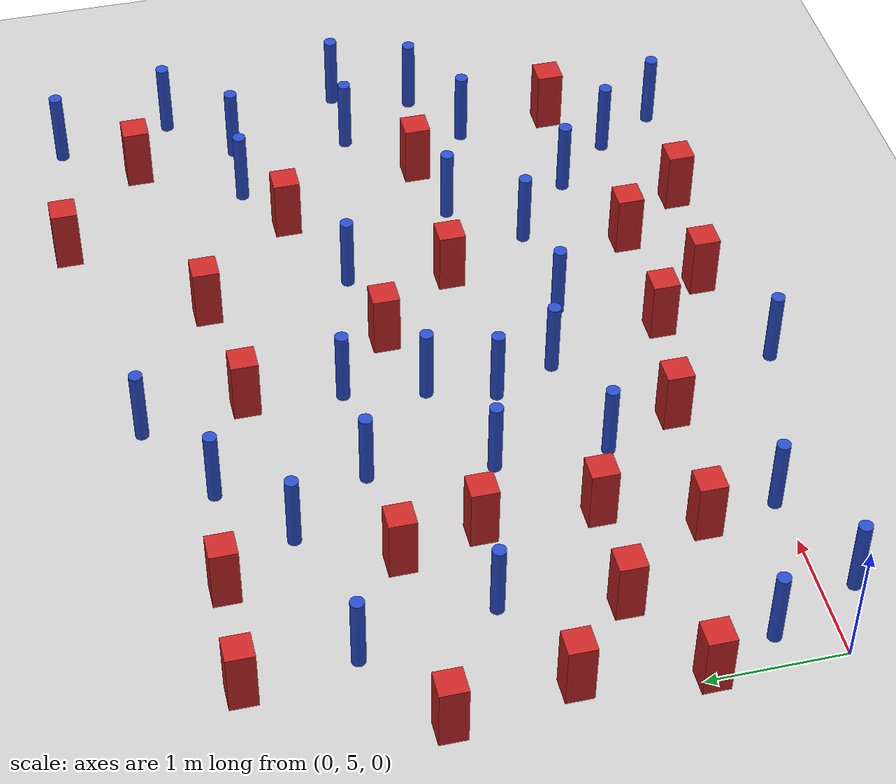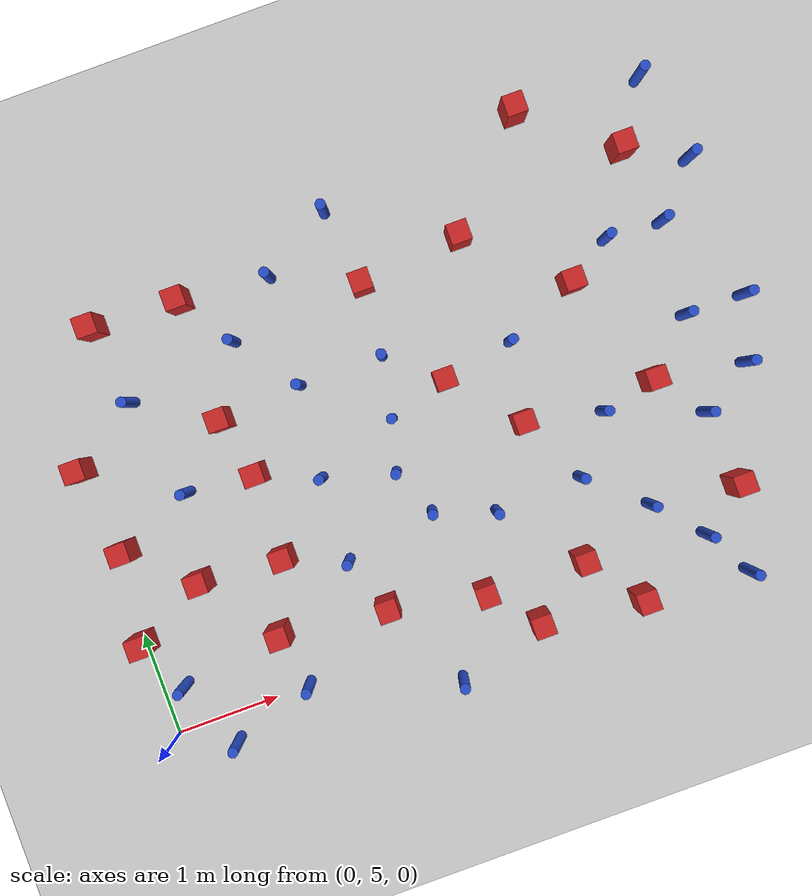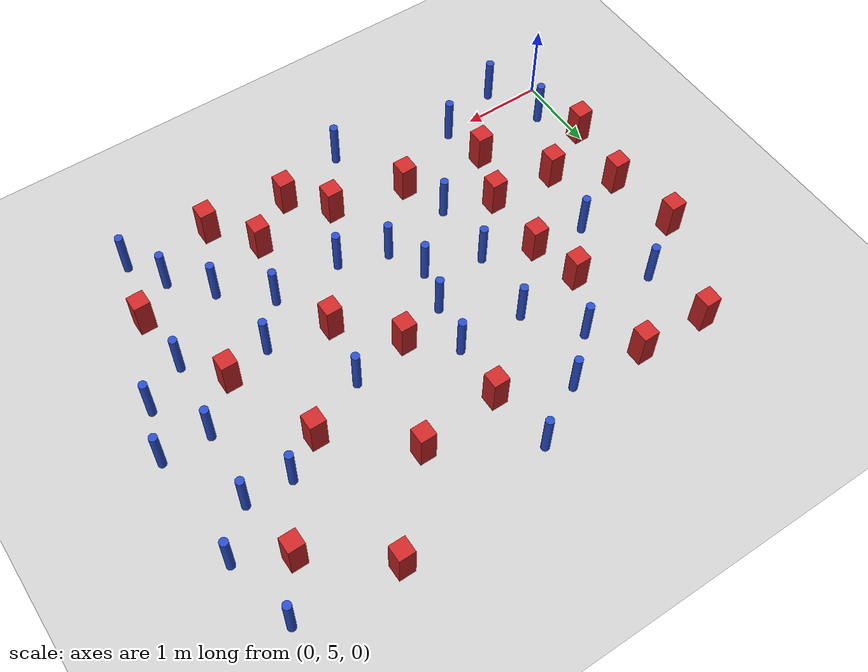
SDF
<sdf version="1.6">
 <world name="default">
  <model name="ground_plane">
   <static>1</static>
   <link name="link">
    <collision name="collision">
     <geometry><plane><normal>0 0 1</normal><size>100 100</size></plane></geometry>
     <surface><friction><ode><mu>100</mu><mu2>50</mu2></ode></friction></surface>
    </collision>
    <visual name="visual">
     <cast_shadows>0</cast_shadows>
     <geometry><plane><normal>0 0 1</normal><size>100 100</size></plane></geometry>
     <material>
      <ambient>1.0 1.0 1.0 1.0</ambient>
      <diffuse>0.8 0.8 0.8 1.0</diffuse>
      <specular>0.01 0.01 0.01 1.000000</specular>
     </material>
    </visual>
   </link>
  </model>
  <model name="square_post_obstacle3">
   <static>true</static>
   <pose>5.82159080179 5.45630986029 1.91545236811e-07 -7.35059704564e-06 1.12565212e-07 2.39332434364e-05</pose>
   <link name="link">
    <pose>0 0 0.25 0 -0 0</pose>
    <inertial>
     <mass>100</mass>
     <inertia>
      <ixx>0.166667</ixx>
      <ixy>0</ixy>
      <ixz>0</ixz>
      <iyy>0.166667</iyy>
      <iyz>0</iyz>
      <izz>0.166667</izz>
     </inertia>
    </inertial>
    <collision name="collision"><geometry><box><size>.2 .2 .5</size></box></geometry></collision>
    <visual name="visual">
     <geometry><box><size>.2 .2 .5</size></box></geometry>
     <material>
      <script><name>Gazebo/Red</name><uri>file://media/materials/scripts/gazebo.material</uri></script>
     </material>
    </visual>
   </link>
  </model>
  <model name="pole_obstacle7">
   <static>true</static>
   <pose>3.00797977638 6.1850498163 7.38925637345e-09 -8.47170692798e-08 1.24976765033e-08 -1.74513093019e-07</pose>
   <link name="link">
    <pose>0 0 0.3 0 -0 0</pose>
    <inertial>
     <mass>1</mass>
     <inertia><ixx>0.145833</ixx><ixy>0</ixy><ixz>0</ixz><iyy>0.145833</iyy><iyz>0</iyz><izz>0.125</izz></inertia>
    </inertial>
    <collision name="collision">
     <geometry><cylinder><radius>0.05</radius><length>.6</length></cylinder></geometry>
    </collision>
    <visual name="visual">
     <geometry><cylinder><radius>0.05</radius><length>.6</length></cylinder></geometry>
     <material>
      <script><name>Gazebo/Blue</name><uri>file://media/materials/scripts/gazebo.material</uri></script>
     </material>
    </visual>
   </link>
  </model>
  <model name="pole_obstacle16">
   <static>true</static>
   <pose>4.96593915491 5.55111846914 7.38925637345e-09 -8.47170692796e-08 1.24976764786e-08 -1.74513093032e-07</pose>
   <link name="link">
    <pose>0 0 0.3 0 -0 0</pose>
    <inertial>
     <mass>1</mass>
     <inertia><ixx>0.145833</ixx><ixy>0</ixy><ixz>0</ixz><iyy>0.145833</iyy><iyz>0</iyz><izz>0.125</izz></inertia>
    </inertial>
    <collision name="collision">
     <geometry><cylinder><radius>0.05</radius><length>.6</length></cylinder></geometry>
    </collision>
    <visual name="visual">
     <geometry><cylinder><radius>0.05</radius><length>.6</length></cylinder></geometry>
     <material>
      <script><name>Gazebo/Blue</name><uri>file://media/materials/scripts/gazebo.material</uri></script>
     </material>
    </visual>
   </link>
  </model>
  <model name="pole_obstacle17">
   <static>true</static>
   <pose>3.00876087252 9.20994033357 7.38925637345e-09 -8.47170692793e-08 1.24976764408e-08 -1.74513093041e-07</pose>
   <link name="link">
    <pose>0 0 0.3 0 -0 0</pose>
    <inertial>
     <mass>1</mass>
     <inertia><ixx>0.145833</ixx><ixy>0</ixy><ixz>0</ixz><iyy>0.145833</iyy><iyz>0</iyz><izz>0.125</izz></inertia>
    </inertial>
    <collision name="collision">
     <geometry><cylinder><radius>0.05</radius><length>.6</length></cylinder></geometry>
    </collision>
    <visual name="visual">
     <geometry><cylinder><radius>0.05</radius><length>.6</length></cylinder></geometry>
     <material>
      <script><name>Gazebo/Blue</name><uri>file://media/materials/scripts/gazebo.material</uri></script>
     </material>
    </visual>
   </link>
  </model>
  <model name="pole_obstacle24">
   <static>true</static>
   <pose>0.891140745379 7.14674532964 7.38925637345e-09 -8.471706928e-08 1.24976765086e-08 -1.74513093015e-07</pose>
   <link name="link">
    <pose>0 0 0.3 0 -0 0</pose>
    <inertial>
     <mass>1</mass>
     <inertia><ixx>0.145833</ixx><ixy>0</ixy><ixz>0</ixz><iyy>0.145833</iyy><iyz>0</iyz><izz>0.125</izz></inertia>
    </inertial>
    <collision name="collision">
     <geometry><cylinder><radius>0.05</radius><length>.6</length></cylinder></geometry>
    </collision>
    <visual name="visual">
     <geometry><cylinder><radius>0.05</radius><length>.6</length></cylinder></geometry>
     <material>
      <script><name>Gazebo/Blue</name><uri>file://media/materials/scripts/gazebo.material</uri></script>
     </material>
    </visual>
   </link>
  </model>
  <model name="pole_obstacle29">
   <static>true</static>
   <pose>2.74446945684 4.58754578758 7.38925637345e-09 -8.47170692798e-08 1.24976765033e-08 -1.74513093019e-07</pose>
   <link name="link">
    <pose>0 0 0.3 0 -0 0</pose>
    <inertial>
     <mass>1</mass>
     <inertia><ixx>0.145833</ixx><ixy>0</ixy><ixz>0</ixz><iyy>0.145833</iyy><iyz>0</iyz><izz>0.125</izz></inertia>
    </inertial>
    <collision name="collision">
     <geometry><cylinder><radius>0.05</radius><length>.6</length></cylinder></geometry>
    </collision>
    <visual name="visual">
     <geometry><cylinder><radius>0.05</radius><length>.6</length></cylinder></geometry>
     <material>
      <script><name>Gazebo/Blue</name><uri>file://media/materials/scripts/gazebo.material</uri></script>
     </material>
    </visual>
   </link>
  </model>
  <model name="pole_obstacle33">
   <static>true</static>
   <pose>6.47072890941 7.11765859032 7.38925637345e-09 -8.47170692796e-08 1.24976764786e-08 -1.74513093032e-07</pose>
   <link name="link">
    <pose>0 0 0.3 0 -0 0</pose>
    <inertial>
     <mass>1</mass>
     <inertia><ixx>0.145833</ixx><ixy>0</ixy><ixz>0</ixz><iyy>0.145833</iyy><iyz>0</iyz><izz>0.125</izz></inertia>
    </inertial>
    <collision name="collision">
     <geometry><cylinder><radius>0.05</radius><length>.6</length></cylinder></geometry>
    </collision>
    <visual name="visual">
     <geometry><cylinder><radius>0.05</radius><length>.6</length></cylinder></geometry>
     <material>
      <script><name>Gazebo/Blue</name><uri>file://media/materials/scripts/gazebo.material</uri></script>
     </material>
    </visual>
   </link>
  </model>
  <model name="square_post_obstacle35">
   <static>true</static>
   <pose>4.10618006728 6.69106213201 1.91545236811e-07 -7.35059704564e-06 1.12565212e-07 2.39332434364e-05</pose>
   <link name="link">
    <pose>0 0 0.25 0 -0 0</pose>
    <inertial>
     <mass>100</mass>
     <inertia>
      <ixx>0.166667</ixx>
      <ixy>0</ixy>
      <ixz>0</ixz>
      <iyy>0.166667</iyy>
      <iyz>0</iyz>
      <izz>0.166667</izz>
     </inertia>
    </inertial>
    <collision name="collision"><geometry><box><size>.2 .2 .5</size></box></geometry></collision>
    <visual name="visual">
     <geometry><box><size>.2 .2 .5</size></box></geometry>
     <material>
      <script><name>Gazebo/Red</name><uri>file://media/materials/scripts/gazebo.material</uri></script>
     </material>
    </visual>
   </link>
  </model>
  <model name="pole_obstacle36">
   <static>true</static>
   <pose>3.06345903076 7.73433652834 7.38925637345e-09 -8.47170692798e-08 1.24976765033e-08 -1.74513093019e-07</pose>
   <link name="link">
    <pose>0 0 0.3 0 -0 0</pose>
    <inertial>
     <mass>1</mass>
     <inertia><ixx>0.145833</ixx><ixy>0</ixy><ixz>0</ixz><iyy>0.145833</iyy><iyz>0</iyz><izz>0.125</izz></inertia>
    </inertial>
    <collision name="collision">
     <geometry><cylinder><radius>0.05</radius><length>.6</length></cylinder></geometry>
    </collision>
    <visual name="visual">
     <geometry><cylinder><radius>0.05</radius><length>.6</length></cylinder></geometry>
     <material>
      <script><name>Gazebo/Blue</name><uri>file://media/materials/scripts/gazebo.material</uri></script>
     </material>
    </visual>
   </link>
  </model>
  <model name="pole_obstacle37">
   <static>true</static>
   <pose>0.545006445419 4.76677208191 7.38925637345e-09 -8.47170692799e-08 1.24976765073e-08 -1.74513093015e-07</pose>
   <link name="link">
    <pose>0 0 0.3 0 -0 0</pose>
    <inertial>
     <mass>1</mass>
     <inertia><ixx>0.145833</ixx><ixy>0</ixy><ixz>0</ixz><iyy>0.145833</iyy><iyz>0</iyz><izz>0.125</izz></inertia>
    </inertial>
    <collision name="collision">
     <geometry><cylinder><radius>0.05</radius><length>.6</length></cylinder></geometry>
    </collision>
    <visual name="visual">
     <geometry><cylinder><radius>0.05</radius><length>.6</length></cylinder></geometry>
     <material>
      <script><name>Gazebo/Blue</name><uri>file://media/materials/scripts/gazebo.material</uri></script>
     </material>
    </visual>
   </link>
  </model>
  <model name="pole_obstacle51">
   <static>true</static>
   <pose>6.23628902199 9.38711099899 7.38925637345e-09 -8.471706928e-08 1.24976765081e-08 -1.74513093015e-07</pose>
   <link name="link">
    <pose>0 0 0.3 0 -0 0</pose>
    <inertial>
     <mass>1</mass>
     <inertia><ixx>0.145833</ixx><ixy>0</ixy><ixz>0</ixz><iyy>0.145833</iyy><iyz>0</iyz><izz>0.125</izz></inertia>
    </inertial>
    <collision name="collision">
     <geometry><cylinder><radius>0.05</radius><length>.6</length></cylinder></geometry>
    </collision>
    <visual name="visual">
     <geometry><cylinder><radius>0.05</radius><length>.6</length></cylinder></geometry>
     <material>
      <script><name>Gazebo/Blue</name><uri>file://media/materials/scripts/gazebo.material</uri></script>
     </material>
    </visual>
   </link>
  </model>
  <model name="pole_obstacle53">
   <static>true</static>
   <pose>6.42150779864 8.50671197494 7.38925637345e-09 -8.471706928e-08 1.24976765081e-08 -1.74513093015e-07</pose>
   <link name="link">
    <pose>0 0 0.3 0 -0 0</pose>
    <inertial>
     <mass>1</mass>
     <inertia><ixx>0.145833</ixx><ixy>0</ixy><ixz>0</ixz><iyy>0.145833</iyy><iyz>0</iyz><izz>0.125</izz></inertia>
    </inertial>
    <collision name="collision">
     <geometry><cylinder><radius>0.05</radius><length>.6</length></cylinder></geometry>
    </collision>
    <visual name="visual">
     <geometry><cylinder><radius>0.05</radius><length>.6</length></cylinder></geometry>
     <material>
      <script><name>Gazebo/Blue</name><uri>file://media/materials/scripts/gazebo.material</uri></script>
     </material>
    </visual>
   </link>
  </model>
  <model name="square_post_obstacle59">
   <static>true</static>
   <pose>4.2031210996 5.26656452936 1.91545236811e-07 -7.35059704564e-06 1.12565212e-07 2.39332434364e-05</pose>
   <link name="link">
    <pose>0 0 0.25 0 -0 0</pose>
    <inertial>
     <mass>100</mass>
     <inertia>
      <ixx>0.166667</ixx>
      <ixy>0</ixy>
      <ixz>0</ixz>
      <iyy>0.166667</iyy>
      <iyz>0</iyz>
      <izz>0.166667</izz>
     </inertia>
    </inertial>
    <collision name="collision"><geometry><box><size>.2 .2 .5</size></box></geometry></collision>
    <visual name="visual">
     <geometry><box><size>.2 .2 .5</size></box></geometry>
     <material>
      <script><name>Gazebo/Red</name><uri>file://media/materials/scripts/gazebo.material</uri></script>
     </material>
    </visual>
   </link>
  </model>
  <model name="square_post_obstacle69">
   <static>true</static>
   <pose>5.01271067699 9.48730758839 1.91545236811e-07 -7.35059704564e-06 1.12565212e-07 2.39332434364e-05</pose>
   <link name="link">
    <pose>0 0 0.25 0 -0 0</pose>
    <inertial>
     <mass>100</mass>
     <inertia>
      <ixx>0.166667</ixx>
      <ixy>0</ixy>
      <ixz>0</ixz>
      <iyy>0.166667</iyy>
      <iyz>0</iyz>
      <izz>0.166667</izz>
     </inertia>
    </inertial>
    <collision name="collision"><geometry><box><size>.2 .2 .5</size></box></geometry></collision>
    <visual name="visual">
     <geometry><box><size>.2 .2 .5</size></box></geometry>
     <material>
      <script><name>Gazebo/Red</name><uri>file://media/materials/scripts/gazebo.material</uri></script>
     </material>
    </visual>
   </link>
  </model>
  <model name="square_post_obstacle72">
   <static>true</static>
   <pose>0.137853001737 6.82053739626 1.91545236811e-07 -7.35059704564e-06 1.12565212e-07 2.39332434364e-05</pose>
   <link name="link">
    <pose>0 0 0.25 0 -0 0</pose>
    <inertial>
     <mass>100</mass>
     <inertia>
      <ixx>0.166667</ixx>
      <ixy>0</ixy>
      <ixz>0</ixz>
      <iyy>0.166667</iyy>
      <iyz>0</iyz>
      <izz>0.166667</izz>
     </inertia>
    </inertial>
    <collision name="collision"><geometry><box><size>.2 .2 .5</size></box></geometry></collision>
    <visual name="visual">
     <geometry><box><size>.2 .2 .5</size></box></geometry>
     <material>
      <script><name>Gazebo/Red</name><uri>file://media/materials/scripts/gazebo.material</uri></script>
     </material>
    </visual>
   </link>
  </model>
  <model name="square_post_obstacle74">
   <static>true</static>
   <pose>0.716877768039 6.31205144906 1.91545236811e-07 -7.35059704564e-06 1.12565212e-07 2.39332434364e-05</pose>
   <link name="link">
    <pose>0 0 0.25 0 -0 0</pose>
    <inertial>
     <mass>100</mass>
     <inertia>
      <ixx>0.166667</ixx>
      <ixy>0</ixy>
      <ixz>0</ixz>
      <iyy>0.166667</iyy>
      <iyz>0</iyz>
      <izz>0.166667</izz>
     </inertia>
    </inertial>
    <collision name="collision"><geometry><box><size>.2 .2 .5</size></box></geometry></collision>
    <visual name="visual">
     <geometry><box><size>.2 .2 .5</size></box></geometry>
     <material>
      <script><name>Gazebo/Red</name><uri>file://media/materials/scripts/gazebo.material</uri></script>
     </material>
    </visual>
   </link>
  </model>
  <model name="pole_obstacle80">
   <static>true</static>
   <pose>5.63670275837 4.64141263718 7.38925637345e-09 -8.47170692796e-08 1.24976764786e-08 -1.74513093032e-07</pose>
   <link name="link">
    <pose>0 0 0.3 0 -0 0</pose>
    <inertial>
     <mass>1</mass>
     <inertia><ixx>0.145833</ixx><ixy>0</ixy><ixz>0</ixz><iyy>0.145833</iyy><iyz>0</iyz><izz>0.125</izz></inertia>
    </inertial>
    <collision name="collision">
     <geometry><cylinder><radius>0.05</radius><length>.6</length></cylinder></geometry>
    </collision>
    <visual name="visual">
     <geometry><cylinder><radius>0.05</radius><length>.6</length></cylinder></geometry>
     <material>
      <script><name>Gazebo/Blue</name><uri>file://media/materials/scripts/gazebo.material</uri></script>
     </material>
    </visual>
   </link>
  </model>
  <model name="pole_obstacle89">
   <static>true</static>
   <pose>2.31267627914 8.80272903111 7.38925637345e-09 -8.47170692793e-08 1.24976764408e-08 -1.74513093041e-07</pose>
   <link name="link">
    <pose>0 0 0.3 0 -0 0</pose>
    <inertial>
     <mass>1</mass>
     <inertia><ixx>0.145833</ixx><ixy>0</ixy><ixz>0</ixz><iyy>0.145833</iyy><iyz>0</iyz><izz>0.125</izz></inertia>
    </inertial>
    <collision name="collision">
     <geometry><cylinder><radius>0.05</radius><length>.6</length></cylinder></geometry>
    </collision>
    <visual name="visual">
     <geometry><cylinder><radius>0.05</radius><length>.6</length></cylinder></geometry>
     <material>
      <script><name>Gazebo/Blue</name><uri>file://media/materials/scripts/gazebo.material</uri></script>
     </material>
    </visual>
   </link>
  </model>
  <model name="pole_obstacle95">
   <static>true</static>
   <pose>0.251070783263 5.43464747808 7.38925637345e-09 -8.47170692799e-08 1.24976765101e-08 -1.74513093014e-07</pose>
   <link name="link">
    <pose>0 0 0.3 0 -0 0</pose>
    <inertial>
     <mass>1</mass>
     <inertia><ixx>0.145833</ixx><ixy>0</ixy><ixz>0</ixz><iyy>0.145833</iyy><iyz>0</iyz><izz>0.125</izz></inertia>
    </inertial>
    <collision name="collision">
     <geometry><cylinder><radius>0.05</radius><length>.6</length></cylinder></geometry>
    </collision>
    <visual name="visual">
     <geometry><cylinder><radius>0.05</radius><length>.6</length></cylinder></geometry>
     <material>
      <script><name>Gazebo/Blue</name><uri>file://media/materials/scripts/gazebo.material</uri></script>
     </material>
    </visual>
   </link>
  </model>
  <model name="pole_obstacle97">
   <static>true</static>
   <pose>5.88731161994 7.12585078882 7.38925637345e-09 -8.47170692796e-08 1.24976764786e-08 -1.74513093032e-07</pose>
   <link name="link">
    <pose>0 0 0.3 0 -0 0</pose>
    <inertial>
     <mass>1</mass>
     <inertia><ixx>0.145833</ixx><ixy>0</ixy><ixz>0</ixz><iyy>0.145833</iyy><iyz>0</iyz><izz>0.125</izz></inertia>
    </inertial>
    <collision name="collision">
     <geometry><cylinder><radius>0.05</radius><length>.6</length></cylinder></geometry>
    </collision>
    <visual name="visual">
     <geometry><cylinder><radius>0.05</radius><length>.6</length></cylinder></geometry>
     <material>
      <script><name>Gazebo/Blue</name><uri>file://media/materials/scripts/gazebo.material</uri></script>
     </material>
    </visual>
   </link>
  </model>
  <model name="pole_obstacle102">
   <static>true</static>
   <pose>2.81491789884 6.65008645232 7.38925637345e-09 -8.47170692798e-08 1.24976765033e-08 -1.74513093019e-07</pose>
   <link name="link">
    <pose>0 0 0.3 0 -0 0</pose>
    <inertial>
     <mass>1</mass>
     <inertia><ixx>0.145833</ixx><ixy>0</ixy><ixz>0</ixz><iyy>0.145833</iyy><iyz>0</iyz><izz>0.125</izz></inertia>
    </inertial>
    <collision name="collision">
     <geometry><cylinder><radius>0.05</radius><length>.6</length></cylinder></geometry>
    </collision>
    <visual name="visual">
     <geometry><cylinder><radius>0.05</radius><length>.6</length></cylinder></geometry>
     <material>
      <script><name>Gazebo/Blue</name><uri>file://media/materials/scripts/gazebo.material</uri></script>
     </material>
    </visual>
   </link>
  </model>
  <model name="square_post_obstacle101">
   <static>true</static>
   <pose>4.98082782905 7.78403314971 1.91545236811e-07 -7.35059704564e-06 1.12565212e-07 2.39332434364e-05</pose>
   <link name="link">
    <pose>0 0 0.25 0 -0 0</pose>
    <inertial>
     <mass>100</mass>
     <inertia>
      <ixx>0.166667</ixx>
      <ixy>0</ixy>
      <ixz>0</ixz>
      <iyy>0.166667</iyy>
      <iyz>0</iyz>
      <izz>0.166667</izz>
     </inertia>
    </inertial>
    <collision name="collision"><geometry><box><size>.2 .2 .5</size></box></geometry></collision>
    <visual name="visual">
     <geometry><box><size>.2 .2 .5</size></box></geometry>
     <material>
      <script><name>Gazebo/Red</name><uri>file://media/materials/scripts/gazebo.material</uri></script>
     </material>
    </visual>
   </link>
  </model>
  <model name="pole_obstacle117">
   <static>true</static>
   <pose>2.11146072913 6.01609163588 7.38925637345e-09 -8.47170692798e-08 1.24976765033e-08 -1.74513093019e-07</pose>
   <link name="link">
    <pose>0 0 0.3 0 -0 0</pose>
    <inertial>
     <mass>1</mass>
     <inertia><ixx>0.145833</ixx><ixy>0</ixy><ixz>0</ixz><iyy>0.145833</iyy><iyz>0</iyz><izz>0.125</izz></inertia>
    </inertial>
    <collision name="collision">
     <geometry><cylinder><radius>0.05</radius><length>.6</length></cylinder></geometry>
    </collision>
    <visual name="visual">
     <geometry><cylinder><radius>0.05</radius><length>.6</length></cylinder></geometry>
     <material>
      <script><name>Gazebo/Blue</name><uri>file://media/materials/scripts/gazebo.material</uri></script>
     </material>
    </visual>
   </link>
  </model>
  <model name="pole_obstacle118">
   <static>true</static>
   <pose>0.678474919848 8.13114536505 7.38925637345e-09 -8.47170692797e-08 1.249767648e-08 -1.74513093032e-07</pose>
   <link name="link">
    <pose>0 0 0.3 0 -0 0</pose>
    <inertial>
     <mass>1</mass>
     <inertia><ixx>0.145833</ixx><ixy>0</ixy><ixz>0</ixz><iyy>0.145833</iyy><iyz>0</iyz><izz>0.125</izz></inertia>
    </inertial>
    <collision name="collision">
     <geometry><cylinder><radius>0.05</radius><length>.6</length></cylinder></geometry>
    </collision>
    <visual name="visual">
     <geometry><cylinder><radius>0.05</radius><length>.6</length></cylinder></geometry>
     <material>
      <script><name>Gazebo/Blue</name><uri>file://media/materials/scripts/gazebo.material</uri></script>
     </material>
    </visual>
   </link>
  </model>
  <model name="square_post_obstacle103">
   <static>true</static>
   <pose>0.576059065511 8.92109403292 1.91545236811e-07 -7.35059704564e-06 1.12565212e-07 2.39332434364e-05</pose>
   <link name="link">
    <pose>0 0 0.25 0 -0 0</pose>
    <inertial>
     <mass>100</mass>
     <inertia>
      <ixx>0.166667</ixx>
      <ixy>0</ixy>
      <ixz>0</ixz>
      <iyy>0.166667</iyy>
      <iyz>0</iyz>
      <izz>0.166667</izz>
     </inertia>
    </inertial>
    <collision name="collision"><geometry><box><size>.2 .2 .5</size></box></geometry></collision>
    <visual name="visual">
     <geometry><box><size>.2 .2 .5</size></box></geometry>
     <material>
      <script><name>Gazebo/Red</name><uri>file://media/materials/scripts/gazebo.material</uri></script>
     </material>
    </visual>
   </link>
  </model>
  <model name="pole_obstacle126">
   <static>true</static>
   <pose>6.27722270443 6.50825019694 7.38925637345e-09 -8.47170692796e-08 1.24976764786e-08 -1.74513093032e-07</pose>
   <link name="link">
    <pose>0 0 0.3 0 -0 0</pose>
    <inertial>
     <mass>1</mass>
     <inertia><ixx>0.145833</ixx><ixy>0</ixy><ixz>0</ixz><iyy>0.145833</iyy><iyz>0</iyz><izz>0.125</izz></inertia>
    </inertial>
    <collision name="collision">
     <geometry><cylinder><radius>0.05</radius><length>.6</length></cylinder></geometry>
    </collision>
    <visual name="visual">
     <geometry><cylinder><radius>0.05</radius><length>.6</length></cylinder></geometry>
     <material>
      <script><name>Gazebo/Blue</name><uri>file://media/materials/scripts/gazebo.material</uri></script>
     </material>
    </visual>
   </link>
  </model>
  <model name="pole_obstacle130">
   <static>true</static>
   <pose>4.85291048636 6.5289192363 7.38925637345e-09 -8.47170692796e-08 1.24976764786e-08 -1.74513093032e-07</pose>
   <link name="link">
    <pose>0 0 0.3 0 -0 0</pose>
    <inertial>
     <mass>1</mass>
     <inertia><ixx>0.145833</ixx><ixy>0</ixy><ixz>0</ixz><iyy>0.145833</iyy><iyz>0</iyz><izz>0.125</izz></inertia>
    </inertial>
    <collision name="collision">
     <geometry><cylinder><radius>0.05</radius><length>.6</length></cylinder></geometry>
    </collision>
    <visual name="visual">
     <geometry><cylinder><radius>0.05</radius><length>.6</length></cylinder></geometry>
     <material>
      <script><name>Gazebo/Blue</name><uri>file://media/materials/scripts/gazebo.material</uri></script>
     </material>
    </visual>
   </link>
  </model>
  <model name="square_post_obstacle115">
   <static>true</static>
   <pose>4.1239431402 8.55144336674 1.91545236811e-07 -7.35059704564e-06 1.12565212e-07 2.39332434364e-05</pose>
   <link name="link">
    <pose>0 0 0.25 0 -0 0</pose>
    <inertial>
     <mass>100</mass>
     <inertia>
      <ixx>0.166667</ixx>
      <ixy>0</ixy>
      <ixz>0</ixz>
      <iyy>0.166667</iyy>
      <iyz>0</iyz>
      <izz>0.166667</izz>
     </inertia>
    </inertial>
    <collision name="collision"><geometry><box><size>.2 .2 .5</size></box></geometry></collision>
    <visual name="visual">
     <geometry><box><size>.2 .2 .5</size></box></geometry>
     <material>
      <script><name>Gazebo/Red</name><uri>file://media/materials/scripts/gazebo.material</uri></script>
     </material>
    </visual>
   </link>
  </model>
  <model name="square_post_obstacle124">
   <static>true</static>
   <pose>5.3958200766 6.65648136986 1.91545236811e-07 -7.35059704564e-06 1.12565212e-07 2.39332434364e-05</pose>
   <link name="link">
    <pose>0 0 0.25 0 -0 0</pose>
    <inertial>
     <mass>100</mass>
     <inertia>
      <ixx>0.166667</ixx>
      <ixy>0</ixy>
      <ixz>0</ixz>
      <iyy>0.166667</iyy>
      <iyz>0</iyz>
      <izz>0.166667</izz>
     </inertia>
    </inertial>
    <collision name="collision"><geometry><box><size>.2 .2 .5</size></box></geometry></collision>
    <visual name="visual">
     <geometry><box><size>.2 .2 .5</size></box></geometry>
     <material>
      <script><name>Gazebo/Red</name><uri>file://media/materials/scripts/gazebo.material</uri></script>
     </material>
    </visual>
   </link>
  </model>
  <model name="pole_obstacle141">
   <static>true</static>
   <pose>2.23678757613 7.73934869282 7.38925637345e-09 -8.47170692798e-08 1.24976765033e-08 -1.74513093019e-07</pose>
   <link name="link">
    <pose>0 0 0.3 0 -0 0</pose>
    <inertial>
     <mass>1</mass>
     <inertia><ixx>0.145833</ixx><ixy>0</ixy><ixz>0</ixz><iyy>0.145833</iyy><iyz>0</iyz><izz>0.125</izz></inertia>
    </inertial>
    <collision name="collision">
     <geometry><cylinder><radius>0.05</radius><length>.6</length></cylinder></geometry>
    </collision>
    <visual name="visual">
     <geometry><cylinder><radius>0.05</radius><length>.6</length></cylinder></geometry>
     <material>
      <script><name>Gazebo/Blue</name><uri>file://media/materials/scripts/gazebo.material</uri></script>
     </material>
    </visual>
   </link>
  </model>
  <model name="square_post_obstacle132">
   <static>true</static>
   <pose>3.61841967943 4.85478895629 1.91545236811e-07 -7.35059704564e-06 1.12565212e-07 2.39332434364e-05</pose>
   <link name="link">
    <pose>0 0 0.25 0 -0 0</pose>
    <inertial>
     <mass>100</mass>
     <inertia>
      <ixx>0.166667</ixx>
      <ixy>0</ixy>
      <ixz>0</ixz>
      <iyy>0.166667</iyy>
      <iyz>0</iyz>
      <izz>0.166667</izz>
     </inertia>
    </inertial>
    <collision name="collision"><geometry><box><size>.2 .2 .5</size></box></geometry></collision>
    <visual name="visual">
     <geometry><box><size>.2 .2 .5</size></box></geometry>
     <material>
      <script><name>Gazebo/Red</name><uri>file://media/materials/scripts/gazebo.material</uri></script>
     </material>
    </visual>
   </link>
  </model>
  <model name="square_post_obstacle137">
   <static>true</static>
   <pose>1.5583474167 7.08879111883 1.91545236811e-07 -7.35059704564e-06 1.12565212e-07 2.39332434364e-05</pose>
   <link name="link">
    <pose>0 0 0.25 0 -0 0</pose>
    <inertial>
     <mass>100</mass>
     <inertia>
      <ixx>0.166667</ixx>
      <ixy>0</ixy>
      <ixz>0</ixz>
      <iyy>0.166667</iyy>
      <iyz>0</iyz>
      <izz>0.166667</izz>
     </inertia>
    </inertial>
    <collision name="collision"><geometry><box><size>.2 .2 .5</size></box></geometry></collision>
    <visual name="visual">
     <geometry><box><size>.2 .2 .5</size></box></geometry>
     <material>
      <script><name>Gazebo/Red</name><uri>file://media/materials/scripts/gazebo.material</uri></script>
     </material>
    </visual>
   </link>
  </model>
  <model name="square_post_obstacle139">
   <static>true</static>
   <pose>1.41983605383 7.68515732018 1.91545236811e-07 -7.35059704564e-06 1.12565212e-07 2.39332434364e-05</pose>
   <link name="link">
    <pose>0 0 0.25 0 -0 0</pose>
    <inertial>
     <mass>100</mass>
     <inertia>
      <ixx>0.166667</ixx>
      <ixy>0</ixy>
      <ixz>0</ixz>
      <iyy>0.166667</iyy>
      <iyz>0</iyz>
      <izz>0.166667</izz>
     </inertia>
    </inertial>
    <collision name="collision"><geometry><box><size>.2 .2 .5</size></box></geometry></collision>
    <visual name="visual">
     <geometry><box><size>.2 .2 .5</size></box></geometry>
     <material>
      <script><name>Gazebo/Red</name><uri>file://media/materials/scripts/gazebo.material</uri></script>
     </material>
    </visual>
   </link>
  </model>
  <model name="pole_obstacle155">
   <static>true</static>
   <pose>1.35750211766 5.04022716539 7.38925637345e-09 -8.47170692799e-08 1.24976765033e-08 -1.74513093018e-07</pose>
   <link name="link">
    <pose>0 0 0.3 0 -0 0</pose>
    <inertial>
     <mass>1</mass>
     <inertia><ixx>0.145833</ixx><ixy>0</ixy><ixz>0</ixz><iyy>0.145833</iyy><iyz>0</iyz><izz>0.125</izz></inertia>
    </inertial>
    <collision name="collision">
     <geometry><cylinder><radius>0.05</radius><length>.6</length></cylinder></geometry>
    </collision>
    <visual name="visual">
     <geometry><cylinder><radius>0.05</radius><length>.6</length></cylinder></geometry>
     <material>
      <script><name>Gazebo/Blue</name><uri>file://media/materials/scripts/gazebo.material</uri></script>
     </material>
    </visual>
   </link>
  </model>
  <model name="pole_obstacle156">
   <static>true</static>
   <pose>5.36907045508 5.1066459222 7.38925637345e-09 -8.47170692796e-08 1.24976764786e-08 -1.74513093032e-07</pose>
   <link name="link">
    <pose>0 0 0.3 0 -0 0</pose>
    <inertial>
     <mass>1</mass>
     <inertia><ixx>0.145833</ixx><ixy>0</ixy><ixz>0</ixz><iyy>0.145833</iyy><iyz>0</iyz><izz>0.125</izz></inertia>
    </inertial>
    <collision name="collision">
     <geometry><cylinder><radius>0.05</radius><length>.6</length></cylinder></geometry>
    </collision>
    <visual name="visual">
     <geometry><cylinder><radius>0.05</radius><length>.6</length></cylinder></geometry>
     <material>
      <script><name>Gazebo/Blue</name><uri>file://media/materials/scripts/gazebo.material</uri></script>
     </material>
    </visual>
   </link>
  </model>
  <model name="square_post_obstacle151">
   <static>true</static>
   <pose>1.53592448807 6.25844243278 1.91545236811e-07 -7.35059704564e-06 1.12565212e-07 2.39332434364e-05</pose>
   <link name="link">
    <pose>0 0 0.25 0 -0 0</pose>
    <inertial>
     <mass>100</mass>
     <inertia>
      <ixx>0.166667</ixx>
      <ixy>0</ixy>
      <ixz>0</ixz>
      <iyy>0.166667</iyy>
      <iyz>0</iyz>
      <izz>0.166667</izz>
     </inertia>
    </inertial>
    <collision name="collision"><geometry><box><size>.2 .2 .5</size></box></geometry></collision>
    <visual name="visual">
     <geometry><box><size>.2 .2 .5</size></box></geometry>
     <material>
      <script><name>Gazebo/Red</name><uri>file://media/materials/scripts/gazebo.material</uri></script>
     </material>
    </visual>
   </link>
  </model>
  <model name="square_post_obstacle160">
   <static>true</static>
   <pose>0.00684803264942 7.68514967806 1.91545236811e-07 -7.35059704564e-06 1.12565212e-07 2.39332434364e-05</pose>
   <link name="link">
    <pose>0 0 0.25 0 -0 0</pose>
    <inertial>
     <mass>100</mass>
     <inertia>
      <ixx>0.166667</ixx>
      <ixy>0</ixy>
      <ixz>0</ixz>
      <iyy>0.166667</iyy>
      <iyz>0</iyz>
      <izz>0.166667</izz>
     </inertia>
    </inertial>
    <collision name="collision"><geometry><box><size>.2 .2 .5</size></box></geometry></collision>
    <visual name="visual">
     <geometry><box><size>.2 .2 .5</size></box></geometry>
     <material>
      <script><name>Gazebo/Red</name><uri>file://media/materials/scripts/gazebo.material</uri></script>
     </material>
    </visual>
   </link>
  </model>
  <model name="pole_obstacle168">
   <static>true</static>
   <pose>3.58404429485 5.98090954864 7.38925637345e-09 -8.47170692798e-08 1.24976765033e-08 -1.74513093019e-07</pose>
   <link name="link">
    <pose>0 0 0.3 0 -0 0</pose>
    <inertial>
     <mass>1</mass>
     <inertia><ixx>0.145833</ixx><ixy>0</ixy><ixz>0</ixz><iyy>0.145833</iyy><iyz>0</iyz><izz>0.125</izz></inertia>
    </inertial>
    <collision name="collision">
     <geometry><cylinder><radius>0.05</radius><length>.6</length></cylinder></geometry>
    </collision>
    <visual name="visual">
     <geometry><cylinder><radius>0.05</radius><length>.6</length></cylinder></geometry>
     <material>
      <script><name>Gazebo/Blue</name><uri>file://media/materials/scripts/gazebo.material</uri></script>
     </material>
    </visual>
   </link>
  </model>
  <model name="pole_obstacle169">
   <static>true</static>
   <pose>2.13388030532 6.84232723835 7.38925637345e-09 -8.47170692798e-08 1.24976765033e-08 -1.74513093019e-07</pose>
   <link name="link">
    <pose>0 0 0.3 0 -0 0</pose>
    <inertial>
     <mass>1</mass>
     <inertia><ixx>0.145833</ixx><ixy>0</ixy><ixz>0</ixz><iyy>0.145833</iyy><iyz>0</iyz><izz>0.125</izz></inertia>
    </inertial>
    <collision name="collision">
     <geometry><cylinder><radius>0.05</radius><length>.6</length></cylinder></geometry>
    </collision>
    <visual name="visual">
     <geometry><cylinder><radius>0.05</radius><length>.6</length></cylinder></geometry>
     <material>
      <script><name>Gazebo/Blue</name><uri>file://media/materials/scripts/gazebo.material</uri></script>
     </material>
    </visual>
   </link>
  </model>
  <model name="square_post_obstacle168">
   <static>true</static>
   <pose>1.43101339884 8.88050841757 1.91545236811e-07 -7.35059704564e-06 1.12565212e-07 2.39332434364e-05</pose>
   <link name="link">
    <pose>0 0 0.25 0 -0 0</pose>
    <inertial>
     <mass>100</mass>
     <inertia>
      <ixx>0.166667</ixx>
      <ixy>0</ixy>
      <ixz>0</ixz>
      <iyy>0.166667</iyy>
      <iyz>0</iyz>
      <izz>0.166667</izz>
     </inertia>
    </inertial>
    <collision name="collision"><geometry><box><size>.2 .2 .5</size></box></geometry></collision>
    <visual name="visual">
     <geometry><box><size>.2 .2 .5</size></box></geometry>
     <material>
      <script><name>Gazebo/Red</name><uri>file://media/materials/scripts/gazebo.material</uri></script>
     </material>
    </visual>
   </link>
  </model>
  <model name="square_post_obstacle172">
   <static>true</static>
   <pose>3.54423449328 7.32164807345 1.91545236811e-07 -7.35059704564e-06 1.12565212e-07 2.39332434364e-05</pose>
   <link name="link">
    <pose>0 0 0.25 0 -0 0</pose>
    <inertial>
     <mass>100</mass>
     <inertia>
      <ixx>0.166667</ixx>
      <ixy>0</ixy>
      <ixz>0</ixz>
      <iyy>0.166667</iyy>
      <iyz>0</iyz>
      <izz>0.166667</izz>
     </inertia>
    </inertial>
    <collision name="collision"><geometry><box><size>.2 .2 .5</size></box></geometry></collision>
    <visual name="visual">
     <geometry><box><size>.2 .2 .5</size></box></geometry>
     <material>
      <script><name>Gazebo/Red</name><uri>file://media/materials/scripts/gazebo.material</uri></script>
     </material>
    </visual>
   </link>
  </model>
  <model name="square_post_obstacle174">
   <static>true</static>
   <pose>4.60888748752 4.73465559828 1.91545236811e-07 -7.35059704564e-06 1.12565212e-07 2.39332434364e-05</pose>
   <link name="link">
    <pose>0 0 0.25 0 -0 0</pose>
    <inertial>
     <mass>100</mass>
     <inertia>
      <ixx>0.166667</ixx>
      <ixy>0</ixy>
      <ixz>0</ixz>
      <iyy>0.166667</iyy>
      <iyz>0</iyz>
      <izz>0.166667</izz>
     </inertia>
    </inertial>
    <collision name="collision"><geometry><box><size>.2 .2 .5</size></box></geometry></collision>
    <visual name="visual">
     <geometry><box><size>.2 .2 .5</size></box></geometry>
     <material>
      <script><name>Gazebo/Red</name><uri>file://media/materials/scripts/gazebo.material</uri></script>
     </material>
    </visual>
   </link>
  </model>
  <model name="square_post_obstacle175">
   <static>true</static>
   <pose>1.25683409997 5.5863081939 1.91545236811e-07 -7.35059704564e-06 1.12565212e-07 2.39332434364e-05</pose>
   <link name="link">
    <pose>0 0 0.25 0 -0 0</pose>
    <inertial>
     <mass>100</mass>
     <inertia>
      <ixx>0.166667</ixx>
      <ixy>0</ixy>
      <ixz>0</ixz>
      <iyy>0.166667</iyy>
      <iyz>0</iyz>
      <izz>0.166667</izz>
     </inertia>
    </inertial>
    <collision name="collision"><geometry><box><size>.2 .2 .5</size></box></geometry></collision>
    <visual name="visual">
     <geometry><box><size>.2 .2 .5</size></box></geometry>
     <material>
      <script><name>Gazebo/Red</name><uri>file://media/materials/scripts/gazebo.material</uri></script>
     </material>
    </visual>
   </link>
  </model>
  <model name="square_post_obstacle177">
   <static>true</static>
   <pose>3.22627912443 5.29171771554 1.91545236811e-07 -7.35059704564e-06 1.12565212e-07 2.39332434364e-05</pose>
   <link name="link">
    <pose>0 0 0.25 0 -0 0</pose>
    <inertial>
     <mass>100</mass>
     <inertia>
      <ixx>0.166667</ixx>
      <ixy>0</ixy>
      <ixz>0</ixz>
      <iyy>0.166667</iyy>
      <iyz>0</iyz>
      <izz>0.166667</izz>
     </inertia>
    </inertial>
    <collision name="collision"><geometry><box><size>.2 .2 .5</size></box></geometry></collision>
    <visual name="visual">
     <geometry><box><size>.2 .2 .5</size></box></geometry>
     <material>
      <script><name>Gazebo/Red</name><uri>file://media/materials/scripts/gazebo.material</uri></script>
     </material>
    </visual>
   </link>
  </model>
  <model name="square_post_obstacle183">
   <static>true</static>
   <pose>5.85621275497 8.81948262317 1.91545236811e-07 -7.35059704564e-06 1.12565212e-07 2.39332434364e-05</pose>
   <link name="link">
    <pose>0 0 0.25 0 -0 0</pose>
    <inertial>
     <mass>100</mass>
     <inertia>
      <ixx>0.166667</ixx>
      <ixy>0</ixy>
      <ixz>0</ixz>
      <iyy>0.166667</iyy>
      <iyz>0</iyz>
      <izz>0.166667</izz>
     </inertia>
    </inertial>
    <collision name="collision"><geometry><box><size>.2 .2 .5</size></box></geometry></collision>
    <visual name="visual">
     <geometry><box><size>.2 .2 .5</size></box></geometry>
     <material>
      <script><name>Gazebo/Red</name><uri>file://media/materials/scripts/gazebo.material</uri></script>
     </material>
    </visual>
   </link>
  </model>
  <model name="square_post_obstacle191">
   <static>true</static>
   <pose>2.30791447323 5.47940147877 1.91545236811e-07 -7.35059704564e-06 1.12565212e-07 2.39332434364e-05</pose>
   <link name="link">
    <pose>0 0 0.25 0 -0 0</pose>
    <inertial>
     <mass>100</mass>
     <inertia>
      <ixx>0.166667</ixx>
      <ixy>0</ixy>
      <ixz>0</ixz>
      <iyy>0.166667</iyy>
      <iyz>0</iyz>
      <izz>0.166667</izz>
     </inertia>
    </inertial>
    <collision name="collision"><geometry><box><size>.2 .2 .5</size></box></geometry></collision>
    <visual name="visual">
     <geometry><box><size>.2 .2 .5</size></box></geometry>
     <material>
      <script><name>Gazebo/Red</name><uri>file://media/materials/scripts/gazebo.material</uri></script>
     </material>
    </visual>
   </link>
  </model>
  <model name="square_post_obstacle192">
   <static>true</static>
   <pose>0.00861611430962 5.94458163757 1.91545236811e-07 -7.35059704564e-06 1.12565212e-07 2.39332434364e-05</pose>
   <link name="link">
    <pose>0 0 0.25 0 -0 0</pose>
    <inertial>
     <mass>100</mass>
     <inertia>
      <ixx>0.166667</ixx>
      <ixy>0</ixy>
      <ixz>0</ixz>
      <iyy>0.166667</iyy>
      <iyz>0</iyz>
      <izz>0.166667</izz>
     </inertia>
    </inertial>
    <collision name="collision"><geometry><box><size>.2 .2 .5</size></box></geometry></collision>
    <visual name="visual">
     <geometry><box><size>.2 .2 .5</size></box></geometry>
     <material>
      <script><name>Gazebo/Red</name><uri>file://media/materials/scripts/gazebo.material</uri></script>
     </material>
    </visual>
   </link>
  </model>
  <model name="square_post_obstacle196">
   <static>true</static>
   <pose>3.11277749112 8.44340511282 1.91545236811e-07 -7.35059704564e-06 1.12565212e-07 2.39332434364e-05</pose>
   <link name="link">
    <pose>0 0 0.25 0 -0 0</pose>
    <inertial>
     <mass>100</mass>
     <inertia>
      <ixx>0.166667</ixx>
      <ixy>0</ixy>
      <ixz>0</ixz>
      <iyy>0.166667</iyy>
      <iyz>0</iyz>
      <izz>0.166667</izz>
     </inertia>
    </inertial>
    <collision name="collision"><geometry><box><size>.2 .2 .5</size></box></geometry></collision>
    <visual name="visual">
     <geometry><box><size>.2 .2 .5</size></box></geometry>
     <material>
      <script><name>Gazebo/Red</name><uri>file://media/materials/scripts/gazebo.material</uri></script>
     </material>
    </visual>
   </link>
  </model>
  <model name="pole_obstacle194">
   <static>true</static>
   <pose>4.43689000957 6.01631002078 7.38925637345e-09 -8.47170692796e-08 1.24976764786e-08 -1.74513093032e-07</pose>
   <link name="link">
    <pose>0 0 0.3 0 -0 0</pose>
    <inertial>
     <mass>1</mass>
     <inertia><ixx>0.145833</ixx><ixy>0</ixy><ixz>0</ixz><iyy>0.145833</iyy><iyz>0</iyz><izz>0.125</izz></inertia>
    </inertial>
    <collision name="collision">
     <geometry><cylinder><radius>0.05</radius><length>.6</length></cylinder></geometry>
    </collision>
    <visual name="visual">
     <geometry><cylinder><radius>0.05</radius><length>.6</length></cylinder></geometry>
     <material>
      <script><name>Gazebo/Blue</name><uri>file://media/materials/scripts/gazebo.material</uri></script>
     </material>
    </visual>
   </link>
  </model>
  <model name="pole_obstacle198">
   <static>true</static>
   <pose>1.78785000957 8.34139002078 7.38925637345e-09 -8.47170692798e-08 1.24976764879e-08 -1.74513093027e-07</pose>
   <link name="link">
    <pose>0 0 0.3 0 -0 0</pose>
    <inertial>
     <mass>1</mass>
     <inertia><ixx>0.145833</ixx><ixy>0</ixy><ixz>0</ixz><iyy>0.145833</iyy><iyz>0</iyz><izz>0.125</izz></inertia>
    </inertial>
    <collision name="collision">
     <geometry><cylinder><radius>0.05</radius><length>.6</length></cylinder></geometry>
    </collision>
    <visual name="visual">
     <geometry><cylinder><radius>0.05</radius><length>.6</length></cylinder></geometry>
     <material>
      <script><name>Gazebo/Blue</name><uri>file://media/materials/scripts/gazebo.material</uri></script>
     </material>
    </visual>
   </link>
  </model>
  <model name="pole_obstacle202">
   <static>true</static>
   <pose>5.97666000957 8.02894002078 7.38925637345e-09 -8.47170692797e-08 1.24976764908e-08 -1.74513093024e-07</pose>
   <link name="link">
    <pose>0 0 0.3 0 -0 0</pose>
    <inertial>
     <mass>1</mass>
     <inertia><ixx>0.145833</ixx><ixy>0</ixy><ixz>0</ixz><iyy>0.145833</iyy><iyz>0</iyz><izz>0.125</izz></inertia>
    </inertial>
    <collision name="collision">
     <geometry><cylinder><radius>0.05</radius><length>.6</length></cylinder></geometry>
    </collision>
    <visual name="visual">
     <geometry><cylinder><radius>0.05</radius><length>.6</length></cylinder></geometry>
     <material>
      <script><name>Gazebo/Blue</name><uri>file://media/materials/scripts/gazebo.material</uri></script>
     </material>
    </visual>
   </link>
  </model>
  <model name="pole_obstacle203">
   <static>true</static>
   <pose>2.95152000957 7.14242002078 7.38925637345e-09 -8.47170692794e-08 1.24976764468e-08 -1.7451309304e-07</pose>
   <link name="link">
    <pose>0 0 0.3 0 -0 0</pose>
    <inertial>
     <mass>1</mass>
     <inertia><ixx>0.145833</ixx><ixy>0</ixy><ixz>0</ixz><iyy>0.145833</iyy><iyz>0</iyz><izz>0.125</izz></inertia>
    </inertial>
    <collision name="collision">
     <geometry><cylinder><radius>0.05</radius><length>.6</length></cylinder></geometry>
    </collision>
    <visual name="visual">
     <geometry><cylinder><radius>0.05</radius><length>.6</length></cylinder></geometry>
     <material>
      <script><name>Gazebo/Blue</name><uri>file://media/materials/scripts/gazebo.material</uri></script>
     </material>
    </visual>
   </link>
  </model>
  <model name="pole_obstacle207">
   <static>true</static>
   <pose>5.76235000957 6.19077002078 7.38925637345e-09 -8.47170692796e-08 1.24976764786e-08 -1.74513093032e-07</pose>
   <link name="link">
    <pose>0 0 0.3 0 -0 0</pose>
    <inertial>
     <mass>1</mass>
     <inertia><ixx>0.145833</ixx><ixy>0</ixy><ixz>0</ixz><iyy>0.145833</iyy><iyz>0</iyz><izz>0.125</izz></inertia>
    </inertial>
    <collision name="collision">
     <geometry><cylinder><radius>0.05</radius><length>.6</length></cylinder></geometry>
    </collision>
    <visual name="visual">
     <geometry><cylinder><radius>0.05</radius><length>.6</length></cylinder></geometry>
     <material>
      <script><name>Gazebo/Blue</name><uri>file://media/materials/scripts/gazebo.material</uri></script>
     </material>
    </visual>
   </link>
  </model>
  <model name="pole_obstacle208">
   <static>true</static>
   <pose>4.24997000957 7.44913002078 7.38925637345e-09 -8.47170692796e-08 1.24976764786e-08 -1.74513093032e-07</pose>
   <link name="link">
    <pose>0 0 0.3 0 -0 0</pose>
    <inertial>
     <mass>1</mass>
     <inertia><ixx>0.145833</ixx><ixy>0</ixy><ixz>0</ixz><iyy>0.145833</iyy><iyz>0</iyz><izz>0.125</izz></inertia>
    </inertial>
    <collision name="collision">
     <geometry><cylinder><radius>0.05</radius><length>.6</length></cylinder></geometry>
    </collision>
    <visual name="visual">
     <geometry><cylinder><radius>0.05</radius><length>.6</length></cylinder></geometry>
     <material>
      <script><name>Gazebo/Blue</name><uri>file://media/materials/scripts/gazebo.material</uri></script>
     </material>
    </visual>
   </link>
  </model>
  <model name="pole_obstacle226">
   <static>true</static>
   <pose>5.42648000957 8.05452002078 7.38925637345e-09 -8.471706928e-08 1.24976765081e-08 -1.74513093015e-07</pose>
   <link name="link">
    <pose>0 0 0.3 0 -0 0</pose>
    <inertial>
     <mass>1</mass>
     <inertia><ixx>0.145833</ixx><ixy>0</ixy><ixz>0</ixz><iyy>0.145833</iyy><iyz>0</iyz><izz>0.125</izz></inertia>
    </inertial>
    <collision name="collision">
     <geometry><cylinder><radius>0.05</radius><length>.6</length></cylinder></geometry>
    </collision>
    <visual name="visual">
     <geometry><cylinder><radius>0.05</radius><length>.6</length></cylinder></geometry>
     <material>
      <script><name>Gazebo/Blue</name><uri>file://media/materials/scripts/gazebo.material</uri></script>
     </material>
    </visual>
   </link>
  </model>
 </world>
</sdf>
